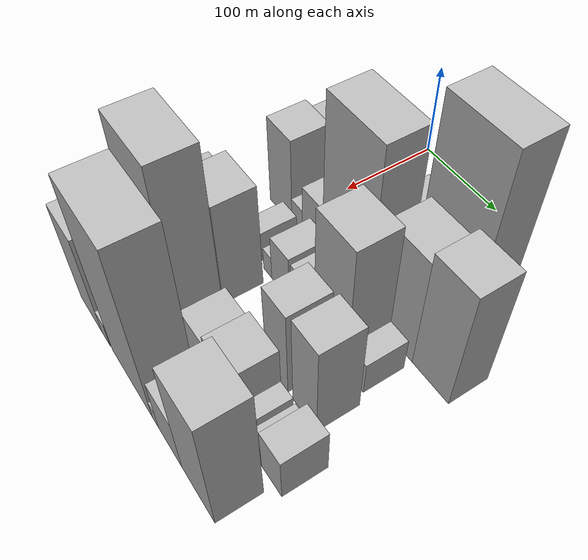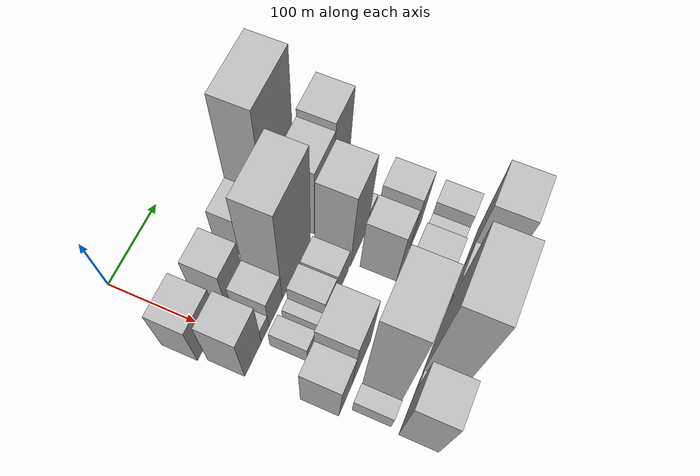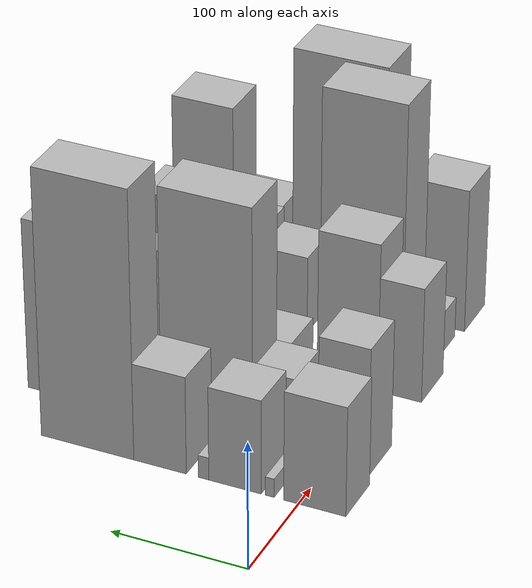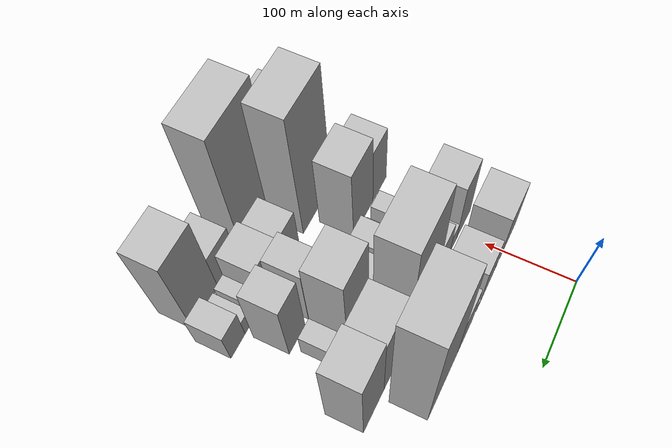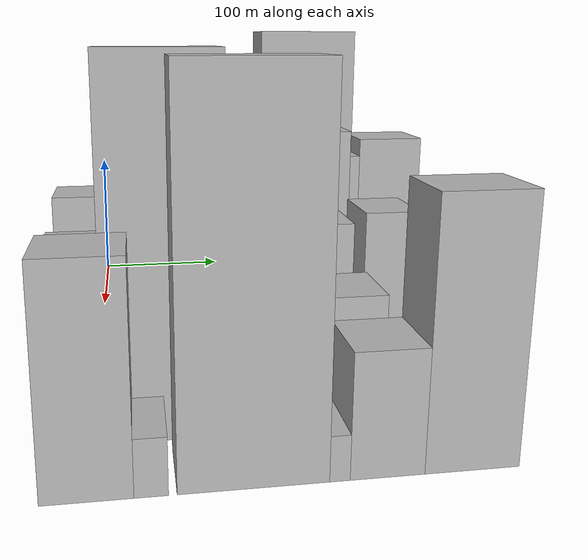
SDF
<sdf version="1.6">
 <world name="default">
  <model name="building_24">
   <static>1</static>
   <pose>100.0000 -11.5762 0 0.000000 0.000000 0.000000</pose>
   <link name="link">
    <pose>0 0 43.50 0 0 0</pose>
    <collision name="collision"><geometry><box><size>40.0000 45.2983 87.0000</size></box></geometry></collision>
    <visual name="visual">
     <cast_shadows>0</cast_shadows>
     <geometry><box><size>40.0000 45.2983 87.0000</size></box></geometry>
     <material>
      <script>
       <uri>model://HANNAS_wall/materials/scripts</uri>
       <uri>model://HANNAS_wall/materials/textures</uri>
       <name>vrc/HANNAS_wall</name>
      </script>
     </material>
    </visual>
   </link>
  </model>
  <model name="building_25">
   <static>1</static>
   <pose>100.0000 21.3272 0 0.000000 0.000000 0.000000</pose>
   <link name="link">
    <pose>0 0 7.50 0 0 0</pose>
    <collision name="collision"><geometry><box><size>40.0000 6.5086 15.0000</size></box></geometry></collision>
    <visual name="visual">
     <cast_shadows>0</cast_shadows>
     <geometry><box><size>40.0000 6.5086 15.0000</size></box></geometry>
     <material>
      <script>
       <uri>model://HANNAS_wall/materials/scripts</uri>
       <uri>model://HANNAS_wall/materials/textures</uri>
       <name>vrc/HANNAS_wall</name>
      </script>
     </material>
    </visual>
   </link>
  </model>
  <model name="building_26">
   <static>1</static>
   <pose>100.0000 47.0952 0 0.000000 0.000000 0.000000</pose>
   <link name="link">
    <pose>0 0 37.50 0 0 0</pose>
    <collision name="collision"><geometry><box><size>40.0000 39.0274 75.0000</size></box></geometry></collision>
    <visual name="visual">
     <cast_shadows>0</cast_shadows>
     <geometry><box><size>40.0000 39.0274 75.0000</size></box></geometry>
     <material>
      <script>
       <uri>model://HANNAS_wall/materials/scripts</uri>
       <uri>model://HANNAS_wall/materials/textures</uri>
       <name>vrc/HANNAS_wall</name>
      </script>
     </material>
    </visual>
   </link>
  </model>
  <model name="building_27">
   <static>1</static>
   <pose>100.0000 70.4942 0 0.000000 0.000000 0.000000</pose>
   <link name="link">
    <pose>0 0 9.00 0 0 0</pose>
    <collision name="collision"><geometry><box><size>40.0000 7.7707 18.0000</size></box></geometry></collision>
    <visual name="visual">
     <cast_shadows>0</cast_shadows>
     <geometry><box><size>40.0000 7.7707 18.0000</size></box></geometry>
     <material>
      <script>
       <uri>model://HANNAS_wall/materials/scripts</uri>
       <uri>model://HANNAS_wall/materials/textures</uri>
       <name>vrc/HANNAS_wall</name>
      </script>
     </material>
    </visual>
   </link>
  </model>
  <model name="building_28">
   <static>1</static>
   <pose>100.0000 103.2333 0 0.000000 0.000000 0.000000</pose>
   <link name="link">
    <pose>0 0 39.00 0 0 0</pose>
    <collision name="collision"><geometry><box><size>40.0000 39.7075 78.0000</size></box></geometry></collision>
    <visual name="visual">
     <cast_shadows>0</cast_shadows>
     <geometry><box><size>40.0000 39.7075 78.0000</size></box></geometry>
     <material>
      <script>
       <uri>model://HANNAS_wall/materials/scripts</uri>
       <uri>model://HANNAS_wall/materials/textures</uri>
       <name>vrc/HANNAS_wall</name>
      </script>
     </material>
    </visual>
   </link>
  </model>
  <model name="building_29">
   <static>1</static>
   <pose>100.0000 158.6253 0 0.000000 0.000000 0.000000</pose>
   <link name="link">
    <pose>0 0 106.50 0 0 0</pose>
    <collision name="collision"><geometry><box><size>40.0000 71.0764 213.0000</size></box></geometry></collision>
    <visual name="visual">
     <cast_shadows>0</cast_shadows>
     <geometry><box><size>40.0000 71.0764 213.0000</size></box></geometry>
     <material>
      <script>
       <uri>model://HANNAS_wall/materials/scripts</uri>
       <uri>model://HANNAS_wall/materials/textures</uri>
       <name>vrc/HANNAS_wall</name>
      </script>
     </material>
    </visual>
   </link>
  </model>
  <model name="building_71">
   <static>1</static>
   <pose>149.0000 -10.8856 0 0.000000 0.000000 0.000000</pose>
   <link name="link">
    <pose>0 0 51.00 0 0 0</pose>
    <collision name="collision"><geometry><box><size>40.0000 37.5283 102.0000</size></box></geometry></collision>
    <visual name="visual">
     <cast_shadows>0</cast_shadows>
     <geometry><box><size>40.0000 37.5283 102.0000</size></box></geometry>
     <material>
      <script>
       <uri>model://HANNAS_wall/materials/scripts</uri>
       <uri>model://HANNAS_wall/materials/textures</uri>
       <name>vrc/HANNAS_wall</name>
      </script>
     </material>
    </visual>
   </link>
  </model>
  <model name="building_72">
   <static>1</static>
   <pose>149.0000 16.5453 0 0.000000 0.000000 0.000000</pose>
   <link name="link">
    <pose>0 0 16.50 0 0 0</pose>
    <collision name="collision"><geometry><box><size>40.0000 17.3335 33.0000</size></box></geometry></collision>
    <visual name="visual">
     <cast_shadows>0</cast_shadows>
     <geometry><box><size>40.0000 17.3335 33.0000</size></box></geometry>
     <material>
      <script>
       <uri>model://HANNAS_wall/materials/scripts</uri>
       <uri>model://HANNAS_wall/materials/textures</uri>
       <name>vrc/HANNAS_wall</name>
      </script>
     </material>
    </visual>
   </link>
  </model>
  <model name="building_73">
   <static>1</static>
   <pose>149.0000 41.0637 0 0.000000 0.000000 0.000000</pose>
   <link name="link">
    <pose>0 0 31.50 0 0 0</pose>
    <collision name="collision"><geometry><box><size>40.0000 31.7033 63.0000</size></box></geometry></collision>
    <visual name="visual">
     <cast_shadows>0</cast_shadows>
     <geometry><box><size>40.0000 31.7033 63.0000</size></box></geometry>
     <material>
      <script>
       <uri>model://HANNAS_wall/materials/scripts</uri>
       <uri>model://HANNAS_wall/materials/textures</uri>
       <name>vrc/HANNAS_wall</name>
      </script>
     </material>
    </visual>
   </link>
  </model>
  <model name="building_74">
   <static>1</static>
   <pose>149.0000 91.6704 0 0.000000 0.000000 0.000000</pose>
   <link name="link">
    <pose>0 0 94.50 0 0 0</pose>
    <collision name="collision"><geometry><box><size>40.0000 69.5101 189.0000</size></box></geometry></collision>
    <visual name="visual">
     <cast_shadows>0</cast_shadows>
     <geometry><box><size>40.0000 69.5101 189.0000</size></box></geometry>
     <material>
      <script>
       <uri>model://HANNAS_wall/materials/scripts</uri>
       <uri>model://HANNAS_wall/materials/textures</uri>
       <name>vrc/HANNAS_wall</name>
      </script>
     </material>
    </visual>
   </link>
  </model>
  <model name="building_75">
   <static>1</static>
   <pose>149.0000 161.1197 0 0.000000 0.000000 0.000000</pose>
   <link name="link">
    <pose>0 0 63.00 0 0 0</pose>
    <collision name="collision"><geometry><box><size>40.0000 49.3885 126.0000</size></box></geometry></collision>
    <visual name="visual">
     <cast_shadows>0</cast_shadows>
     <geometry><box><size>40.0000 49.3885 126.0000</size></box></geometry>
     <material>
      <script>
       <uri>model://HANNAS_wall/materials/scripts</uri>
       <uri>model://HANNAS_wall/materials/textures</uri>
       <name>vrc/HANNAS_wall</name>
      </script>
     </material>
    </visual>
   </link>
  </model>
  <model name="building_76">
   <static>1</static>
   <pose>149.0000 208.2466 0 0.000000 0.000000 0.000000</pose>
   <link name="link">
    <pose>0 0 69.00 0 0 0</pose>
    <collision name="collision"><geometry><box><size>40.0000 44.8652 138.0000</size></box></geometry></collision>
    <visual name="visual">
     <cast_shadows>0</cast_shadows>
     <geometry><box><size>40.0000 44.8652 138.0000</size></box></geometry>
     <material>
      <script>
       <uri>model://HANNAS_wall/materials/scripts</uri>
       <uri>model://HANNAS_wall/materials/textures</uri>
       <name>vrc/HANNAS_wall</name>
      </script>
     </material>
    </visual>
   </link>
  </model>
  <model name="building_119">
   <static>1</static>
   <pose>198.0000 19.2305 0 0.000000 0.000000 0.000000</pose>
   <link name="link">
    <pose>0 0 18.00 0 0 0</pose>
    <collision name="collision"><geometry><box><size>40.0000 21.4598 36.0000</size></box></geometry></collision>
    <visual name="visual">
     <cast_shadows>0</cast_shadows>
     <geometry><box><size>40.0000 21.4598 36.0000</size></box></geometry>
     <material>
      <script>
       <uri>model://HANNAS_wall/materials/scripts</uri>
       <uri>model://HANNAS_wall/materials/textures</uri>
       <name>vrc/HANNAS_wall</name>
      </script>
     </material>
    </visual>
   </link>
  </model>
  <model name="building_120">
   <static>1</static>
   <pose>198.0000 44.6415 0 0.000000 0.000000 0.000000</pose>
   <link name="link">
    <pose>0 0 13.50 0 0 0</pose>
    <collision name="collision"><geometry><box><size>40.0000 13.3621 27.0000</size></box></geometry></collision>
    <visual name="visual">
     <cast_shadows>0</cast_shadows>
     <geometry><box><size>40.0000 13.3621 27.0000</size></box></geometry>
     <material>
      <script>
       <uri>model://HANNAS_wall/materials/scripts</uri>
       <uri>model://HANNAS_wall/materials/textures</uri>
       <name>vrc/HANNAS_wall</name>
      </script>
     </material>
    </visual>
   </link>
  </model>
  <model name="building_121">
   <static>1</static>
   <pose>198.0000 65.3377 0 0.000000 0.000000 0.000000</pose>
   <link name="link">
    <pose>0 0 27.00 0 0 0</pose>
    <collision name="collision"><geometry><box><size>40.0000 28.0304 54.0000</size></box></geometry></collision>
    <visual name="visual">
     <cast_shadows>0</cast_shadows>
     <geometry><box><size>40.0000 28.0304 54.0000</size></box></geometry>
     <material>
      <script>
       <uri>model://HANNAS_wall/materials/scripts</uri>
       <uri>model://HANNAS_wall/materials/textures</uri>
       <name>vrc/HANNAS_wall</name>
      </script>
     </material>
    </visual>
   </link>
  </model>
  <model name="building_122">
   <static>1</static>
   <pose>198.0000 97.2248 0 0.000000 0.000000 0.000000</pose>
   <link name="link">
    <pose>0 0 25.50 0 0 0</pose>
    <collision name="collision"><geometry><box><size>40.0000 29.7440 51.0000</size></box></geometry></collision>
    <visual name="visual">
     <cast_shadows>0</cast_shadows>
     <geometry><box><size>40.0000 29.7440 51.0000</size></box></geometry>
     <material>
      <script>
       <uri>model://HANNAS_wall/materials/scripts</uri>
       <uri>model://HANNAS_wall/materials/textures</uri>
       <name>vrc/HANNAS_wall</name>
      </script>
     </material>
    </visual>
   </link>
  </model>
  <model name="building_123">
   <static>1</static>
   <pose>198.0000 140.6705 0 0.000000 0.000000 0.000000</pose>
   <link name="link">
    <pose>0 0 75.00 0 0 0</pose>
    <collision name="collision"><geometry><box><size>40.0000 47.1474 150.0000</size></box></geometry></collision>
    <visual name="visual">
     <cast_shadows>0</cast_shadows>
     <geometry><box><size>40.0000 47.1474 150.0000</size></box></geometry>
     <material>
      <script>
       <uri>model://HANNAS_wall/materials/scripts</uri>
       <uri>model://HANNAS_wall/materials/textures</uri>
       <name>vrc/HANNAS_wall</name>
      </script>
     </material>
    </visual>
   </link>
  </model>
  <model name="building_124">
   <static>1</static>
   <pose>198.0000 175.2721 0 0.000000 0.000000 0.000000</pose>
   <link name="link">
    <pose>0 0 19.50 0 0 0</pose>
    <collision name="collision"><geometry><box><size>40.0000 22.0558 39.0000</size></box></geometry></collision>
    <visual name="visual">
     <cast_shadows>0</cast_shadows>
     <geometry><box><size>40.0000 22.0558 39.0000</size></box></geometry>
     <material>
      <script>
       <uri>model://HANNAS_wall/materials/scripts</uri>
       <uri>model://HANNAS_wall/materials/textures</uri>
       <name>vrc/HANNAS_wall</name>
      </script>
     </material>
    </visual>
   </link>
  </model>
  <model name="building_166">
   <static>1</static>
   <pose>247.0000 -11.4057 0 0.000000 0.000000 0.000000</pose>
   <link name="link">
    <pose>0 0 46.50 0 0 0</pose>
    <collision name="collision"><geometry><box><size>40.0000 33.0544 93.0000</size></box></geometry></collision>
    <visual name="visual">
     <cast_shadows>0</cast_shadows>
     <geometry><box><size>40.0000 33.0544 93.0000</size></box></geometry>
     <material>
      <script>
       <uri>model://HANNAS_wall/materials/scripts</uri>
       <uri>model://HANNAS_wall/materials/textures</uri>
       <name>vrc/HANNAS_wall</name>
      </script>
     </material>
    </visual>
   </link>
  </model>
  <model name="building_167">
   <static>1</static>
   <pose>247.0000 28.4714 0 0.000000 0.000000 0.000000</pose>
   <link name="link">
    <pose>0 0 60.00 0 0 0</pose>
    <collision name="collision"><geometry><box><size>40.0000 46.6997 120.0000</size></box></geometry></collision>
    <visual name="visual">
     <cast_shadows>0</cast_shadows>
     <geometry><box><size>40.0000 46.6997 120.0000</size></box></geometry>
     <material>
      <script>
       <uri>model://HANNAS_wall/materials/scripts</uri>
       <uri>model://HANNAS_wall/materials/textures</uri>
       <name>vrc/HANNAS_wall</name>
      </script>
     </material>
    </visual>
   </link>
  </model>
  <model name="building_168">
   <static>1</static>
   <pose>247.0000 137.6351 0 0.000000 0.000000 0.000000</pose>
   <link name="link">
    <pose>0 0 51.00 0 0 0</pose>
    <collision name="collision"><geometry><box><size>40.0000 31.8759 102.0000</size></box></geometry></collision>
    <visual name="visual">
     <cast_shadows>0</cast_shadows>
     <geometry><box><size>40.0000 31.8759 102.0000</size></box></geometry>
     <material>
      <script>
       <uri>model://HANNAS_wall/materials/scripts</uri>
       <uri>model://HANNAS_wall/materials/textures</uri>
       <name>vrc/HANNAS_wall</name>
      </script>
     </material>
    </visual>
   </link>
  </model>
  <model name="building_169">
   <static>1</static>
   <pose>247.0000 177.0601 0 0.000000 0.000000 0.000000</pose>
   <link name="link">
    <pose>0 0 54.00 0 0 0</pose>
    <collision name="collision"><geometry><box><size>40.0000 32.9741 108.0000</size></box></geometry></collision>
    <visual name="visual">
     <cast_shadows>0</cast_shadows>
     <geometry><box><size>40.0000 32.9741 108.0000</size></box></geometry>
     <material>
      <script>
       <uri>model://HANNAS_wall/materials/scripts</uri>
       <uri>model://HANNAS_wall/materials/textures</uri>
       <name>vrc/HANNAS_wall</name>
      </script>
     </material>
    </visual>
   </link>
  </model>
  <model name="building_211">
   <static>1</static>
   <pose>296.0000 -7.5408 0 0.000000 0.000000 0.000000</pose>
   <link name="link">
    <pose>0 0 16.50 0 0 0</pose>
    <collision name="collision"><geometry><box><size>40.0000 19.3779 33.0000</size></box></geometry></collision>
    <visual name="visual">
     <cast_shadows>0</cast_shadows>
     <geometry><box><size>40.0000 19.3779 33.0000</size></box></geometry>
     <material>
      <script>
       <uri>model://HANNAS_wall/materials/scripts</uri>
       <uri>model://HANNAS_wall/materials/textures</uri>
       <name>vrc/HANNAS_wall</name>
      </script>
     </material>
    </visual>
   </link>
  </model>
  <model name="building_212">
   <static>1</static>
   <pose>296.0000 39.2769 0 0.000000 0.000000 0.000000</pose>
   <link name="link">
    <pose>0 0 102.00 0 0 0</pose>
    <collision name="collision"><geometry><box><size>40.0000 64.2575 204.0000</size></box></geometry></collision>
    <visual name="visual">
     <cast_shadows>0</cast_shadows>
     <geometry><box><size>40.0000 64.2575 204.0000</size></box></geometry>
     <material>
      <script>
       <uri>model://HANNAS_wall/materials/scripts</uri>
       <uri>model://HANNAS_wall/materials/textures</uri>
       <name>vrc/HANNAS_wall</name>
      </script>
     </material>
    </visual>
   </link>
  </model>
  <model name="building_213">
   <static>1</static>
   <pose>296.0000 99.7199 0 0.000000 0.000000 0.000000</pose>
   <link name="link">
    <pose>0 0 31.50 0 0 0</pose>
    <collision name="collision"><geometry><box><size>40.0000 36.6285 63.0000</size></box></geometry></collision>
    <visual name="visual">
     <cast_shadows>0</cast_shadows>
     <geometry><box><size>40.0000 36.6285 63.0000</size></box></geometry>
     <material>
      <script>
       <uri>model://HANNAS_wall/materials/scripts</uri>
       <uri>model://HANNAS_wall/materials/textures</uri>
       <name>vrc/HANNAS_wall</name>
      </script>
     </material>
    </visual>
   </link>
  </model>
  <model name="building_214">
   <static>1</static>
   <pose>296.0000 138.3616 0 0.000000 0.000000 0.000000</pose>
   <link name="link">
    <pose>0 0 37.50 0 0 0</pose>
    <collision name="collision"><geometry><box><size>40.0000 40.6550 75.0000</size></box></geometry></collision>
    <visual name="visual">
     <cast_shadows>0</cast_shadows>
     <geometry><box><size>40.0000 40.6550 75.0000</size></box></geometry>
     <material>
      <script>
       <uri>model://HANNAS_wall/materials/scripts</uri>
       <uri>model://HANNAS_wall/materials/textures</uri>
       <name>vrc/HANNAS_wall</name>
      </script>
     </material>
    </visual>
   </link>
  </model>
  <model name="building_215">
   <static>1</static>
   <pose>296.0000 167.1240 0 0.000000 0.000000 0.000000</pose>
   <link name="link">
    <pose>0 0 16.50 0 0 0</pose>
    <collision name="collision"><geometry><box><size>40.0000 16.8697 33.0000</size></box></geometry></collision>
    <visual name="visual">
     <cast_shadows>0</cast_shadows>
     <geometry><box><size>40.0000 16.8697 33.0000</size></box></geometry>
     <material>
      <script>
       <uri>model://HANNAS_wall/materials/scripts</uri>
       <uri>model://HANNAS_wall/materials/textures</uri>
       <name>vrc/HANNAS_wall</name>
      </script>
     </material>
    </visual>
   </link>
  </model>
  <model name="building_216">
   <static>1</static>
   <pose>296.0000 186.3547 0 0.000000 0.000000 0.000000</pose>
   <link name="link">
    <pose>0 0 15.00 0 0 0</pose>
    <collision name="collision"><geometry><box><size>40.0000 15.5917 30.0000</size></box></geometry></collision>
    <visual name="visual">
     <cast_shadows>0</cast_shadows>
     <geometry><box><size>40.0000 15.5917 30.0000</size></box></geometry>
     <material>
      <script>
       <uri>model://HANNAS_wall/materials/scripts</uri>
       <uri>model://HANNAS_wall/materials/textures</uri>
       <name>vrc/HANNAS_wall</name>
      </script>
     </material>
    </visual>
   </link>
  </model>
  <model name="building_217">
   <static>1</static>
   <pose>296.0000 207.9764 0 0.000000 0.000000 0.000000</pose>
   <link name="link">
    <pose>0 0 27.00 0 0 0</pose>
    <collision name="collision"><geometry><box><size>40.0000 27.6517 54.0000</size></box></geometry></collision>
    <visual name="visual">
     <cast_shadows>0</cast_shadows>
     <geometry><box><size>40.0000 27.6517 54.0000</size></box></geometry>
     <material>
      <script>
       <uri>model://HANNAS_wall/materials/scripts</uri>
       <uri>model://HANNAS_wall/materials/textures</uri>
       <name>vrc/HANNAS_wall</name>
      </script>
     </material>
    </visual>
   </link>
  </model>
  <model name="building_264">
   <static>1</static>
   <pose>345.0000 0.5031 0 0.000000 0.000000 0.000000</pose>
   <link name="link">
    <pose>0 0 58.50 0 0 0</pose>
    <collision name="collision"><geometry><box><size>40.0000 43.1724 117.0000</size></box></geometry></collision>
    <visual name="visual">
     <cast_shadows>0</cast_shadows>
     <geometry><box><size>40.0000 43.1724 117.0000</size></box></geometry>
     <material>
      <script>
       <uri>model://HANNAS_wall/materials/scripts</uri>
       <uri>model://HANNAS_wall/materials/textures</uri>
       <name>vrc/HANNAS_wall</name>
      </script>
     </material>
    </visual>
   </link>
  </model>
  <model name="building_265">
   <static>1</static>
   <pose>345.0000 30.0804 0 0.000000 0.000000 0.000000</pose>
   <link name="link">
    <pose>0 0 15.00 0 0 0</pose>
    <collision name="collision"><geometry><box><size>40.0000 15.9821 30.0000</size></box></geometry></collision>
    <visual name="visual">
     <cast_shadows>0</cast_shadows>
     <geometry><box><size>40.0000 15.9821 30.0000</size></box></geometry>
     <material>
      <script>
       <uri>model://HANNAS_wall/materials/scripts</uri>
       <uri>model://HANNAS_wall/materials/textures</uri>
       <name>vrc/HANNAS_wall</name>
      </script>
     </material>
    </visual>
   </link>
  </model>
  <model name="building_266">
   <static>1</static>
   <pose>345.0000 78.6294 0 0.000000 0.000000 0.000000</pose>
   <link name="link">
    <pose>0 0 100.50 0 0 0</pose>
    <collision name="collision"><geometry><box><size>40.0000 73.1160 201.0000</size></box></geometry></collision>
    <visual name="visual">
     <cast_shadows>0</cast_shadows>
     <geometry><box><size>40.0000 73.1160 201.0000</size></box></geometry>
     <material>
      <script>
       <uri>model://HANNAS_wall/materials/scripts</uri>
       <uri>model://HANNAS_wall/materials/textures</uri>
       <name>vrc/HANNAS_wall</name>
      </script>
     </material>
    </visual>
   </link>
  </model>
  <model name="building_267">
   <static>1</static>
   <pose>345.0000 120.2496 0 0.000000 0.000000 0.000000</pose>
   <link name="link">
    <pose>0 0 12.00 0 0 0</pose>
    <collision name="collision"><geometry><box><size>40.0000 10.1246 24.0000</size></box></geometry></collision>
    <visual name="visual">
     <cast_shadows>0</cast_shadows>
     <geometry><box><size>40.0000 10.1246 24.0000</size></box></geometry>
     <material>
      <script>
       <uri>model://HANNAS_wall/materials/scripts</uri>
       <uri>model://HANNAS_wall/materials/textures</uri>
       <name>vrc/HANNAS_wall</name>
      </script>
     </material>
    </visual>
   </link>
  </model>
  <model name="building_268">
   <static>1</static>
   <pose>345.0000 144.1303 0 0.000000 0.000000 0.000000</pose>
   <link name="link">
    <pose>0 0 33.00 0 0 0</pose>
    <collision name="collision"><geometry><box><size>40.0000 37.6369 66.0000</size></box></geometry></collision>
    <visual name="visual">
     <cast_shadows>0</cast_shadows>
     <geometry><box><size>40.0000 37.6369 66.0000</size></box></geometry>
     <material>
      <script>
       <uri>model://HANNAS_wall/materials/scripts</uri>
       <uri>model://HANNAS_wall/materials/textures</uri>
       <name>vrc/HANNAS_wall</name>
      </script>
     </material>
    </visual>
   </link>
  </model>
  <model name="building_269">
   <static>1</static>
   <pose>345.0000 187.4685 0 0.000000 0.000000 0.000000</pose>
   <link name="link">
    <pose>0 0 70.50 0 0 0</pose>
    <collision name="collision"><geometry><box><size>40.0000 49.0395 141.0000</size></box></geometry></collision>
    <visual name="visual">
     <cast_shadows>0</cast_shadows>
     <geometry><box><size>40.0000 49.0395 141.0000</size></box></geometry>
     <material>
      <script>
       <uri>model://HANNAS_wall/materials/scripts</uri>
       <uri>model://HANNAS_wall/materials/textures</uri>
       <name>vrc/HANNAS_wall</name>
      </script>
     </material>
    </visual>
   </link>
  </model>
 </world>
</sdf>
